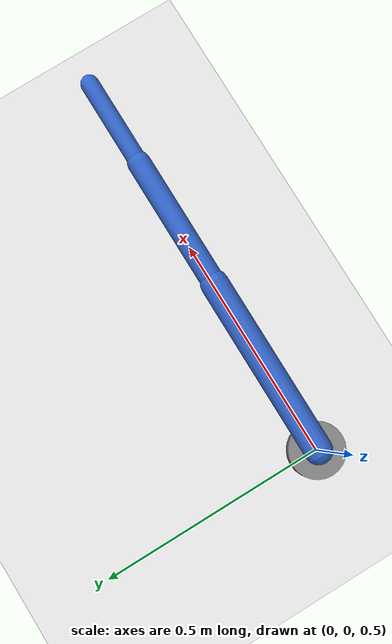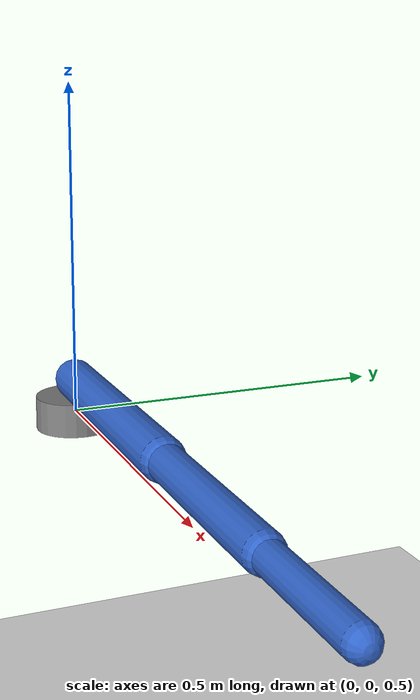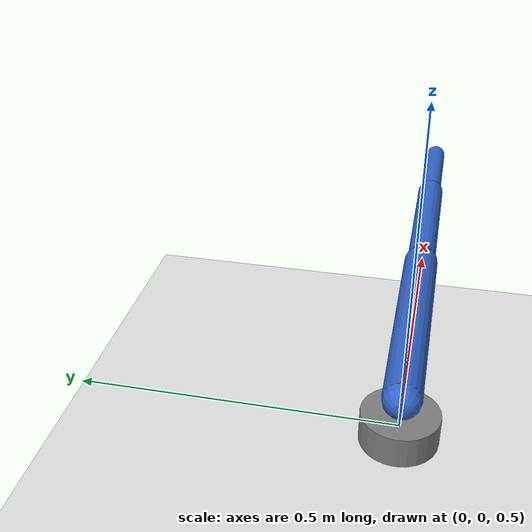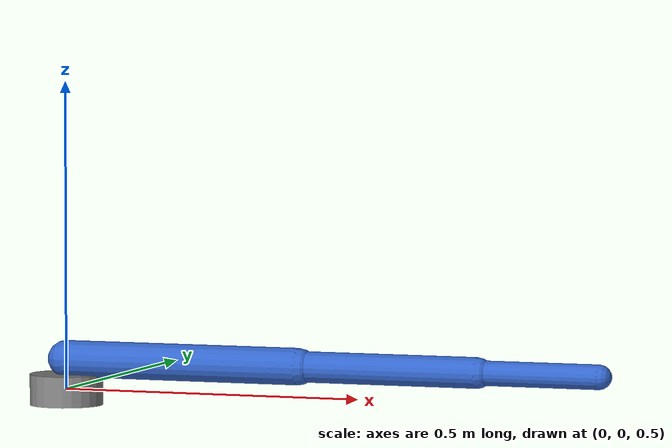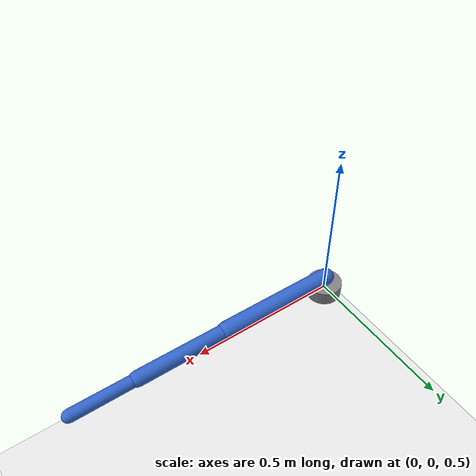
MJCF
<mujoco model="rrr">
  <compiler angle="radian"/>

  <option gravity="0 0 -9.81" timestep="0.001"/>

  <default>
    <joint damping="0.1" armature="0.01"/>
    <geom rgba="0.2 0.4 0.8 1.0" contype="1" conaffinity="1"/>
  </default>

  <worldbody>
    <!-- Ground plane -->
    <geom name="floor" type="plane" size="2 2 0.01" rgba="0.9 0.9 0.9 1" contype="0" conaffinity="0"/>

    <!-- Base mount -->
    <body name="base" pos="0 0 0.5">
      <geom name="base_geom" type="cylinder" size="0.06 0.025" rgba="0.5 0.5 0.5 1"/>

      <!-- Link 1: 0.4 m -->
      <body name="link1" pos="0 0 0.05">
        <joint name="joint1" type="hinge" axis="0 1 0" range="-3.14159 3.14159"
               damping="0.1"/>
        <geom name="link1_geom" type="capsule" fromto="0 0 0 0.4 0 0"
              size="0.03" mass="2.0"/>

        <!-- Link 2: 0.3 m -->
        <body name="link2" pos="0.4 0 0">
          <joint name="joint2" type="hinge" axis="0 0 1" range="-3.14159 3.14159"
                 damping="0.1"/>
          <geom name="link2_geom" type="capsule" fromto="0 0 0 0.3 0 0"
                size="0.025" mass="1.5"/>

          <!-- Link 3: 0.2 m -->
          <body name="link3" pos="0.3 0 0">
            <joint name="joint3" type="hinge" axis="0 0 1" range="-3.14159 3.14159"
                   damping="0.1"/>
            <geom name="link3_geom" type="capsule" fromto="0 0 0 0.2 0 0"
                  size="0.02" mass="1.0"/>

            <!-- End-effector site -->
            <site name="tip" pos="0.2 0 0" size="0.015" rgba="1 0 0 1"/>
          </body>
        </body>
      </body>
    </body>
  </worldbody>

  <actuator>
    <motor name="tau1" joint="joint1" ctrlrange="-50 50"/>
    <motor name="tau2" joint="joint2" ctrlrange="-30 30"/>
    <motor name="tau3" joint="joint3" ctrlrange="-20 20"/>
  </actuator>
</mujoco>
